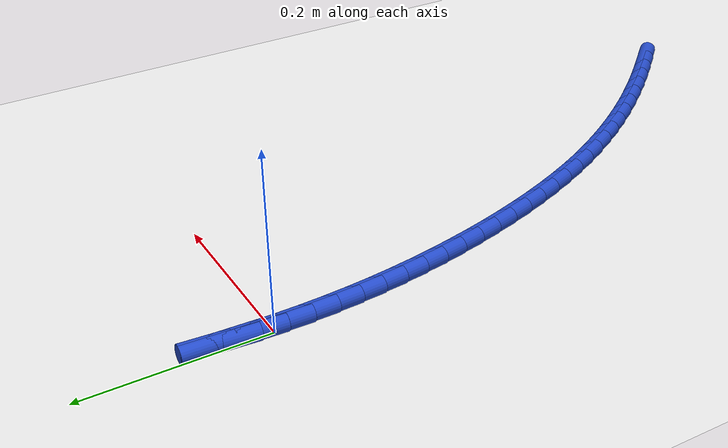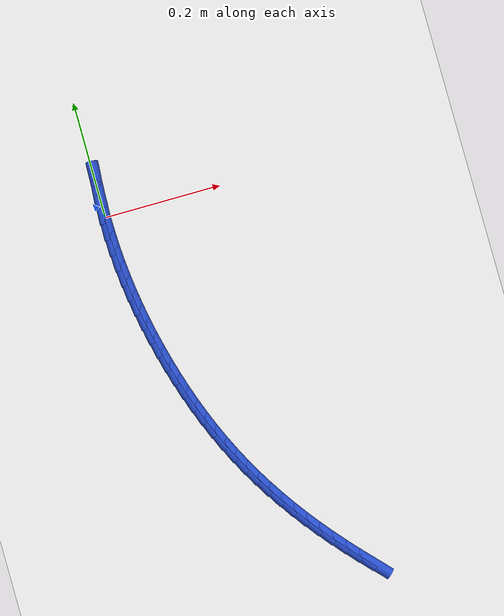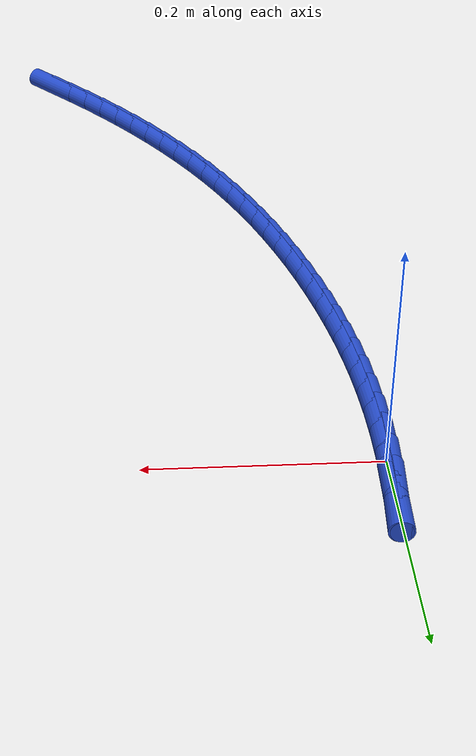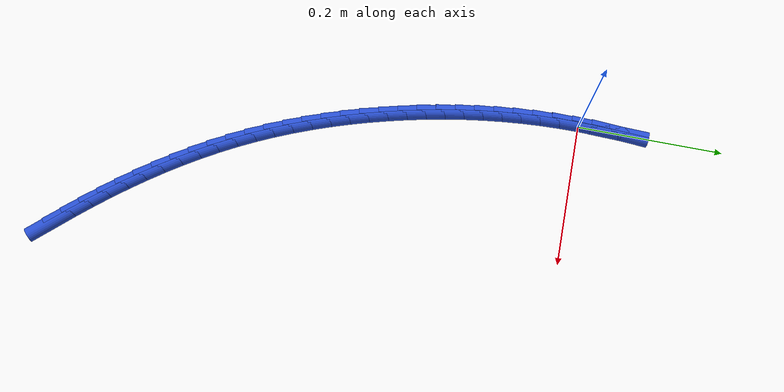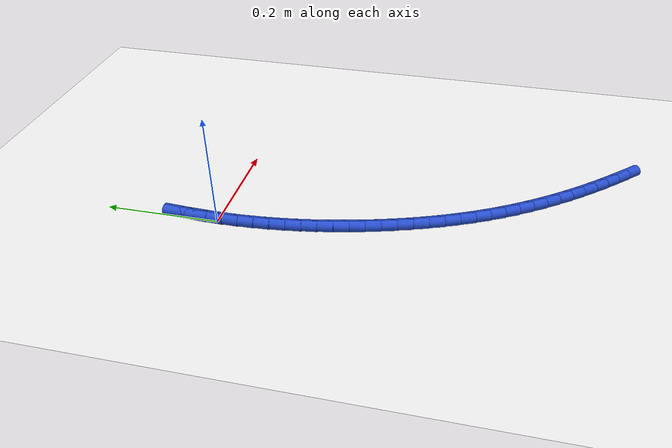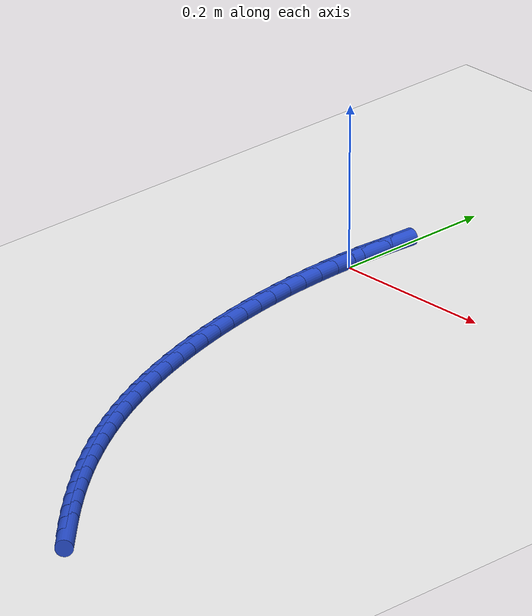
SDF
<sdf version="1.6">
 <world name="default">
  <model name="ground_plane">
   <static>1</static>
   <link name="link">
    <collision name="collision">
     <geometry><plane><normal>0 0 1</normal><size>100 100</size></plane></geometry>
     <surface><friction><ode><mu>100</mu><mu2>50</mu2></ode></friction></surface>
    </collision>
    <visual name="visual">
     <cast_shadows>0</cast_shadows>
     <geometry><plane><normal>0 0 1</normal><size>100 100</size></plane></geometry>
     <material>
      <script><uri>file://media/materials/scripts/gazebo.material</uri><name>Gazebo/WhiteGlow</name></script>
     </material>
    </visual>
   </link>
  </model>
  <model name="line">
   <link name="link_0">
    <pose>-8.673617379884035e-19 6.938893903907228e-18 0.01 0 1.57 1.5521254542420253</pose>
    <collision name="collision">
     <geometry><cylinder><radius>0.01</radius><length>0.08</length></cylinder></geometry>
    </collision>
    <visual name="visual">
     <material>
      <script><name>Gazebo/Blue</name><uri>file://media/materials/scripts/gazebo.material</uri></script>
     </material>
     <geometry><cylinder><radius>0.01</radius><length>0.08</length></cylinder></geometry>
    </visual>
   </link>
   <link name="link_1">
    <pose>0.0005129618821565518 0.027470717980359317 0.01 0 1.57 1.5252083230366738</pose>
    <collision name="collision">
     <geometry><cylinder><radius>0.01</radius><length>0.08</length></cylinder></geometry>
    </collision>
    <visual name="visual">
     <material>
      <script><name>Gazebo/Blue</name><uri>file://media/materials/scripts/gazebo.material</uri></script>
     </material>
     <geometry><cylinder><radius>0.01</radius><length>0.08</length></cylinder></geometry>
    </visual>
   </link>
   <link name="link_2">
    <pose>0.0017716657887085212 0.055062007533316366 0.01 0 1.57 1.4994219719318491</pose>
    <collision name="collision">
     <geometry><cylinder><radius>0.01</radius><length>0.08</length></cylinder></geometry>
    </collision>
    <visual name="visual">
     <material>
      <script><name>Gazebo/Blue</name><uri>file://media/materials/scripts/gazebo.material</uri></script>
     </material>
     <geometry><cylinder><radius>0.01</radius><length>0.08</length></cylinder></geometry>
    </visual>
   </link>
   <link name="link_242">
    <pose>0.27168350920655854 -0.674160616648254 0.01 0 1.57 -0.8187183373717721</pose>
    <collision name="collision">
     <geometry><cylinder><radius>0.01</radius><length>0.08</length></cylinder></geometry>
    </collision>
    <visual name="visual">
     <material>
      <script><name>Gazebo/Blue</name><uri>file://media/materials/scripts/gazebo.material</uri></script>
     </material>
     <geometry><cylinder><radius>0.01</radius><length>0.08</length></cylinder></geometry>
    </visual>
   </link>
   <link name="link_243">
    <pose>0.2533492201808037 -0.6545619261847628 0.01 0 1.57 -0.840177597478853</pose>
    <collision name="collision">
     <geometry><cylinder><radius>0.01</radius><length>0.08</length></cylinder></geometry>
    </collision>
    <visual name="visual">
     <material>
      <script><name>Gazebo/Blue</name><uri>file://media/materials/scripts/gazebo.material</uri></script>
     </material>
     <geometry><cylinder><radius>0.01</radius><length>0.08</length></cylinder></geometry>
    </visual>
   </link>
   <link name="link_244">
    <pose>0.23547852614756784 -0.6346176764158981 0.01 0 1.57 -0.8628921087048959</pose>
    <collision name="collision">
     <geometry><cylinder><radius>0.01</radius><length>0.08</length></cylinder></geometry>
    </collision>
    <visual name="visual">
     <material>
      <script><name>Gazebo/Blue</name><uri>file://media/materials/scripts/gazebo.material</uri></script>
     </material>
     <geometry><cylinder><radius>0.01</radius><length>0.08</length></cylinder></geometry>
    </visual>
   </link>
   <link name="link_245">
    <pose>0.21810297324483485 -0.6143165503410335 0.01 0 1.57 -0.8868777592505077</pose>
    <collision name="collision">
     <geometry><cylinder><radius>0.01</radius><length>0.08</length></cylinder></geometry>
    </collision>
    <visual name="visual">
     <material>
      <script><name>Gazebo/Blue</name><uri>file://media/materials/scripts/gazebo.material</uri></script>
     </material>
     <geometry><cylinder><radius>0.01</radius><length>0.08</length></cylinder></geometry>
    </visual>
   </link>
   <link name="link_246">
    <pose>0.20125410761058718 -0.5936472309595417 0.01 0 1.57 -0.9121458394986682</pose>
    <collision name="collision">
     <geometry><cylinder><radius>0.01</radius><length>0.08</length></cylinder></geometry>
    </collision>
    <visual name="visual">
     <material>
      <script><name>Gazebo/Blue</name><uri>file://media/materials/scripts/gazebo.material</uri></script>
     </material>
     <geometry><cylinder><radius>0.01</radius><length>0.08</length></cylinder></geometry>
    </visual>
   </link>
   <link name="link_247">
    <pose>0.1849634753828073 -0.5725984012707958 0.01 0 1.57 -0.9387018189140581</pose>
    <collision name="collision">
     <geometry><cylinder><radius>0.01</radius><length>0.08</length></cylinder></geometry>
    </collision>
    <visual name="visual">
     <material>
      <script><name>Gazebo/Blue</name><uri>file://media/materials/scripts/gazebo.material</uri></script>
     </material>
     <geometry><cylinder><radius>0.01</radius><length>0.08</length></cylinder></geometry>
    </visual>
   </link>
   <link name="link_248">
    <pose>0.16926262269947914 -0.5511587442741696 0.01 0 1.57 -0.9665440463530962</pose>
    <collision name="collision">
     <geometry><cylinder><radius>0.01</radius><length>0.08</length></cylinder></geometry>
    </collision>
    <visual name="visual">
     <material>
      <script><name>Gazebo/Blue</name><uri>file://media/materials/scripts/gazebo.material</uri></script>
     </material>
     <geometry><cylinder><radius>0.01</radius><length>0.08</length></cylinder></geometry>
    </visual>
   </link>
   <link name="link_249">
    <pose>0.15418309569858463 -0.5293169429690351 0.01 0 1.57 -0.9956624051462025</pose>
    <collision name="collision">
     <geometry><cylinder><radius>0.01</radius><length>0.08</length></cylinder></geometry>
    </collision>
    <visual name="visual">
     <material>
      <script><name>Gazebo/Blue</name><uri>file://media/materials/scripts/gazebo.material</uri></script>
     </material>
     <geometry><cylinder><radius>0.01</radius><length>0.08</length></cylinder></geometry>
    </visual>
   </link>
   <link name="link_250">
    <pose>0.13975644051810773 -0.5070616803547668 0.01 0 1.57 -1.0260369668065787</pose>
    <collision name="collision">
     <geometry><cylinder><radius>0.01</radius><length>0.08</length></cylinder></geometry>
    </collision>
    <visual name="visual">
     <material>
      <script><name>Gazebo/Blue</name><uri>file://media/materials/scripts/gazebo.material</uri></script>
     </material>
     <geometry><cylinder><radius>0.01</radius><length>0.08</length></cylinder></geometry>
    </visual>
   </link>
   <link name="link_251">
    <pose>0.12601420329603039 -0.4843816394307363 0.01 0 1.57 -1.0576367002823681</pose>
    <collision name="collision">
     <geometry><cylinder><radius>0.01</radius><length>0.08</length></cylinder></geometry>
    </collision>
    <visual name="visual">
     <material>
      <script><name>Gazebo/Blue</name><uri>file://media/materials/scripts/gazebo.material</uri></script>
     </material>
     <geometry><cylinder><radius>0.01</radius><length>0.08</length></cylinder></geometry>
    </visual>
   </link>
   <link name="link_252">
    <pose>0.11298793017033641 -0.4612655031963185 0.01 0 1.57 -1.0903755237631345</pose>
    <collision name="collision">
     <geometry><cylinder><radius>0.01</radius><length>0.08</length></cylinder></geometry>
    </collision>
    <visual name="visual">
     <material>
      <script><name>Gazebo/Blue</name><uri>file://media/materials/scripts/gazebo.material</uri></script>
     </material>
     <geometry><cylinder><radius>0.01</radius><length>0.08</length></cylinder></geometry>
    </visual>
   </link>
   <link name="link_253">
    <pose>0.10070839226849122 -0.43770292723492604 0.01 0 1.57 -1.1230729195171234</pose>
    <collision name="collision">
     <geometry><cylinder><radius>0.01</radius><length>0.08</length></cylinder></geometry>
    </collision>
    <visual name="visual">
     <material>
      <script><name>Gazebo/Blue</name><uri>file://media/materials/scripts/gazebo.material</uri></script>
     </material>
     <geometry><cylinder><radius>0.01</radius><length>0.08</length></cylinder></geometry>
    </visual>
   </link>
   <link name="link_254">
    <pose>0.08918559924991244 -0.4137096213215749 0.01 0 1.57 -1.1545260101573809</pose>
    <collision name="collision">
     <geometry><cylinder><radius>0.01</radius><length>0.08</length></cylinder></geometry>
    </collision>
    <visual name="visual">
     <material>
      <script><name>Gazebo/Blue</name><uri>file://media/materials/scripts/gazebo.material</uri></script>
     </material>
     <geometry><cylinder><radius>0.01</radius><length>0.08</length></cylinder></geometry>
    </visual>
   </link>
   <link name="link_255">
    <pose>0.07840702386026042 -0.3893295774831731 0.01 0 1.57 -1.1847414880638014</pose>
    <collision name="collision">
     <geometry><cylinder><radius>0.01</radius><length>0.08</length></cylinder></geometry>
    </collision>
    <visual name="visual">
     <material>
      <script><name>Gazebo/Blue</name><uri>file://media/materials/scripts/gazebo.material</uri></script>
     </material>
     <geometry><cylinder><radius>0.01</radius><length>0.08</length></cylinder></geometry>
    </visual>
   </link>
   <link name="link_256">
    <pose>0.06835900799587999 -0.3646082068835007 0.01 0 1.57 -1.2137919290277015</pose>
    <collision name="collision">
     <geometry><cylinder><radius>0.01</radius><length>0.08</length></cylinder></geometry>
    </collision>
    <visual name="visual">
     <material>
      <script><name>Gazebo/Blue</name><uri>file://media/materials/scripts/gazebo.material</uri></script>
     </material>
     <geometry><cylinder><radius>0.01</radius><length>0.08</length></cylinder></geometry>
    </visual>
   </link>
   <link name="link_257">
    <pose>0.05902789355311503 -0.3395909206863359 0.01 0 1.57 -1.2417521237268325</pose>
    <collision name="collision">
     <geometry><cylinder><radius>0.01</radius><length>0.08</length></cylinder></geometry>
    </collision>
    <visual name="visual">
     <material>
      <script><name>Gazebo/Blue</name><uri>file://media/materials/scripts/gazebo.material</uri></script>
     </material>
     <geometry><cylinder><radius>0.01</radius><length>0.08</length></cylinder></geometry>
    </visual>
   </link>
   <link name="link_258">
    <pose>0.05040002242830948 -0.31432313005545665 0.01 0 1.57 -1.2686981300953046</pose>
    <collision name="collision">
     <geometry><cylinder><radius>0.01</radius><length>0.08</length></cylinder></geometry>
    </collision>
    <visual name="visual">
     <material>
      <script><name>Gazebo/Blue</name><uri>file://media/materials/scripts/gazebo.material</uri></script>
     </material>
     <geometry><cylinder><radius>0.01</radius><length>0.08</length></cylinder></geometry>
    </visual>
   </link>
   <link name="link_259">
    <pose>0.04246173651780807 -0.2888502461546433 0.01 0 1.57 -1.2947065868173793</pose>
    <collision name="collision">
     <geometry><cylinder><radius>0.01</radius><length>0.08</length></cylinder></geometry>
    </collision>
    <visual name="visual">
     <material>
      <script><name>Gazebo/Blue</name><uri>file://media/materials/scripts/gazebo.material</uri></script>
     </material>
     <geometry><cylinder><radius>0.01</radius><length>0.08</length></cylinder></geometry>
    </visual>
   </link>
   <link name="link_260">
    <pose>0.03519937771795447 -0.26321768014767294 0.01 0 1.57 -1.3198542568255254</pose>
    <collision name="collision">
     <geometry><cylinder><radius>0.01</radius><length>0.08</length></cylinder></geometry>
    </collision>
    <visual name="visual">
     <material>
      <script><name>Gazebo/Blue</name><uri>file://media/materials/scripts/gazebo.material</uri></script>
     </material>
     <geometry><cylinder><radius>0.01</radius><length>0.08</length></cylinder></geometry>
    </visual>
   </link>
   <link name="link_261">
    <pose>0.028599287925093347 -0.23747084319832593 0.01 0 1.57 -1.3443296530515294</pose>
    <collision name="collision">
     <geometry><cylinder><radius>0.01</radius><length>0.08</length></cylinder></geometry>
    </collision>
    <visual name="visual">
     <material>
      <script><name>Gazebo/Blue</name><uri>file://media/materials/scripts/gazebo.material</uri></script>
     </material>
     <geometry><cylinder><radius>0.01</radius><length>0.08</length></cylinder></geometry>
    </visual>
   </link>
   <link name="link_262">
    <pose>0.02264974182004493 -0.2116503338457716 0.01 0 1.57 -1.3691923406428834</pose>
    <collision name="collision">
     <geometry><cylinder><radius>0.01</radius><length>0.08</length></cylinder></geometry>
    </collision>
    <visual name="visual">
     <material>
      <script><name>Gazebo/Blue</name><uri>file://media/materials/scripts/gazebo.material</uri></script>
     </material>
     <geometry><cylinder><radius>0.01</radius><length>0.08</length></cylinder></geometry>
    </visual>
   </link>
   <link name="link_263">
    <pose>0.01735674883915338 -0.18575259116811116 0.01 0 1.57 -1.3949211750346493</pose>
    <collision name="collision">
     <geometry><cylinder><radius>0.01</radius><length>0.08</length></cylinder></geometry>
    </collision>
    <visual name="visual">
     <material>
      <script><name>Gazebo/Blue</name><uri>file://media/materials/scripts/gazebo.material</uri></script>
     </material>
     <geometry><cylinder><radius>0.01</radius><length>0.08</length></cylinder></geometry>
    </visual>
   </link>
   <link name="link_264">
    <pose>0.01273585166113833 -0.1597503165130276 0.01 0 1.57 -1.4214192911218488</pose>
    <collision name="collision">
     <geometry><cylinder><radius>0.01</radius><length>0.08</length></cylinder></geometry>
    </collision>
    <visual name="visual">
     <material>
      <script><name>Gazebo/Blue</name><uri>file://media/materials/scripts/gazebo.material</uri></script>
     </material>
     <geometry><cylinder><radius>0.01</radius><length>0.08</length></cylinder></geometry>
    </visual>
   </link>
   <link name="link_265">
    <pose>0.00880268456361687 -0.13361598314736783 0.01 0 1.57 -1.4485739932843549</pose>
    <collision name="collision">
     <geometry><cylinder><radius>0.01</radius><length>0.08</length></cylinder></geometry>
    </collision>
    <visual name="visual">
     <material>
      <script><name>Gazebo/Blue</name><uri>file://media/materials/scripts/gazebo.material</uri></script>
     </material>
     <geometry><cylinder><radius>0.01</radius><length>0.08</length></cylinder></geometry>
    </visual>
   </link>
   <link name="link_266">
    <pose>0.005572881824205594 -0.10732206433797568 0.01 0 1.57 -1.4762637365334668</pose>
    <collision name="collision">
     <geometry><cylinder><radius>0.01</radius><length>0.08</length></cylinder></geometry>
    </collision>
    <visual name="visual">
     <material>
      <script><name>Gazebo/Blue</name><uri>file://media/materials/scripts/gazebo.material</uri></script>
     </material>
     <geometry><cylinder><radius>0.01</radius><length>0.08</length></cylinder></geometry>
    </visual>
   </link>
   <link name="link_267">
    <pose>0.0030620777205215078 -0.08084103335169801 0.01 0 1.57 -1.5043601882792226</pose>
    <collision name="collision">
     <geometry><cylinder><radius>0.01</radius><length>0.08</length></cylinder></geometry>
    </collision>
    <visual name="visual">
     <material>
      <script><name>Gazebo/Blue</name><uri>file://media/materials/scripts/gazebo.material</uri></script>
     </material>
     <geometry><cylinder><radius>0.01</radius><length>0.08</length></cylinder></geometry>
    </visual>
   </link>
   <link name="link_268">
    <pose>0.0012859065301813332 -0.05414536345537942 0.01 0 1.57 -1.5327305943652973</pose>
    <collision name="collision">
     <geometry><cylinder><radius>0.01</radius><length>0.08</length></cylinder></geometry>
    </collision>
    <visual name="visual">
     <material>
      <script><name>Gazebo/Blue</name><uri>file://media/materials/scripts/gazebo.material</uri></script>
     </material>
     <geometry><cylinder><radius>0.01</radius><length>0.08</length></cylinder></geometry>
    </visual>
   </link>
   <link name="link_269">
    <pose>0.0002600025308018691 -0.02720752791586445 0.01 0 1.57 -1.5612403459148794</pose>
    <collision name="collision">
     <geometry><cylinder><radius>0.01</radius><length>0.08</length></cylinder></geometry>
    </collision>
    <visual name="visual">
     <material>
      <script><name>Gazebo/Blue</name><uri>file://media/materials/scripts/gazebo.material</uri></script>
     </material>
     <geometry><cylinder><radius>0.01</radius><length>0.08</length></cylinder></geometry>
    </visual>
   </link>
   <link name="link_270">
    <pose>-8.673617379884035e-19 -6.245004513516506e-17 0.01 0 1.57 1.5518370277266418</pose>
    <collision name="collision">
     <geometry><cylinder><radius>0.01</radius><length>0.08</length></cylinder></geometry>
    </collision>
    <visual name="visual">
     <material>
      <script><name>Gazebo/Blue</name><uri>file://media/materials/scripts/gazebo.material</uri></script>
     </material>
     <geometry><cylinder><radius>0.01</radius><length>0.08</length></cylinder></geometry>
    </visual>
   </link>
   <link name="link_271">
    <pose>0.0005215332153925304 0.02750474702536999 0.01 0 1.57 1.5234466467033416</pose>
    <collision name="collision">
     <geometry><cylinder><radius>0.01</radius><length>0.08</length></cylinder></geometry>
    </collision>
    <visual name="visual">
     <material>
      <script><name>Gazebo/Blue</name><uri>file://media/materials/scripts/gazebo.material</uri></script>
     </material>
     <geometry><cylinder><radius>0.01</radius><length>0.08</length></cylinder></geometry>
    </visual>
   </link>
   <link name="link_272">
    <pose>0.0018402364545963088 0.05533423989339958 0.01 0 1.57 1.5375518389778327</pose>
    <collision name="collision">
     <geometry><cylinder><radius>0.01</radius><length>0.08</length></cylinder></geometry>
    </collision>
    <visual name="visual">
     <material>
      <script><name>Gazebo/Blue</name><uri>file://media/materials/scripts/gazebo.material</uri></script>
     </material>
     <geometry><cylinder><radius>0.01</radius><length>0.08</length></cylinder></geometry>
    </visual>
   </link>
  </model>
 </world>
</sdf>
